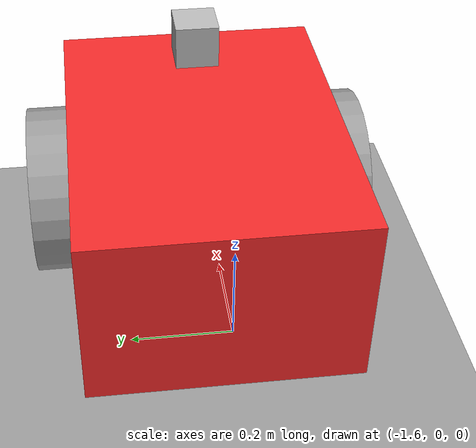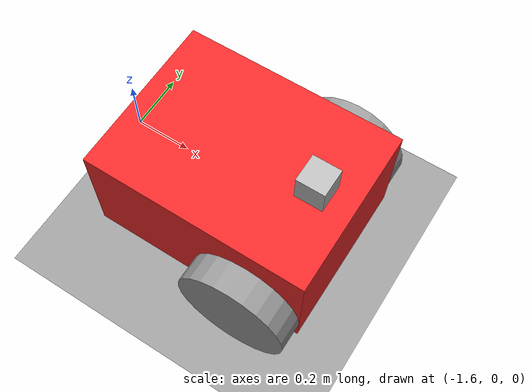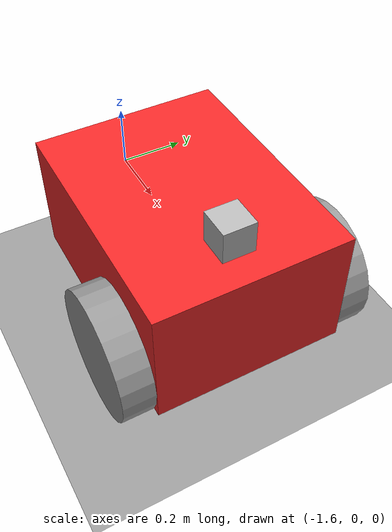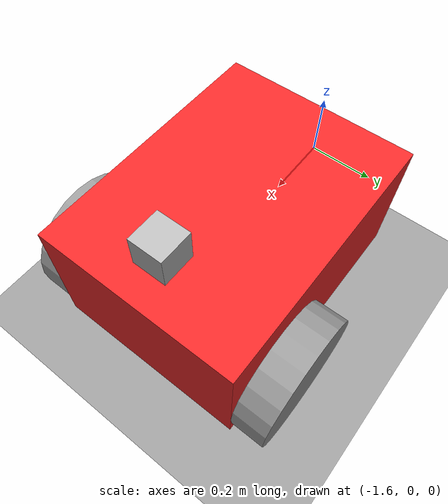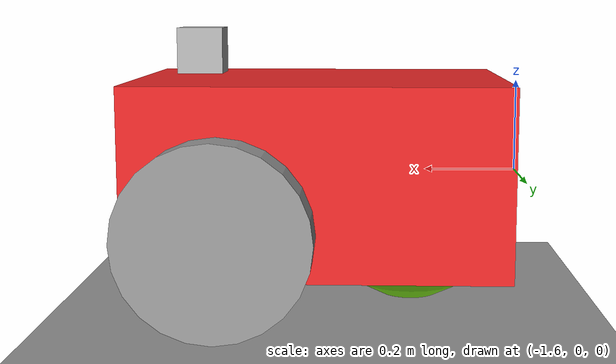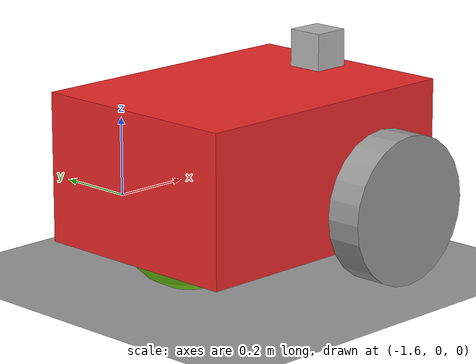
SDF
<?xml version='1.0'?>
<sdf version='1.7'>
  <model name='mobilerobot'>
    <link name='link_0'>
      <inertial>
        <mass>190.622</mass>
        <inertia>
          <ixx>6.99162</ixx>
          <ixy>0</ixy>
          <ixz>0</ixz>
          <iyy>17.0189</iyy>
          <iyz>0</iyz>
          <izz>21.743</izz>
        </inertia>
        <pose>0 0 0 0 -0 0</pose>
      </inertial>
      <pose>-1.16691 0.001464 0.00673 0 -0 0</pose>
      <gravity>1</gravity>
      <self_collide>0</self_collide>
      <kinematic>0</kinematic>
      <enable_wind>0</enable_wind>
      <visual name='visual'>
        <pose>0 0 0 0 -0 0</pose>
        <geometry>
          <box>
            <size>0.8 0.6 0.4</size>
          </box>
        </geometry>
        <material>
          <lighting>1</lighting>
          <script>
            <uri>file://media/materials/scripts/gazebo.material</uri>
            <name>Gazebo/Grey</name>
          </script>
          <shader type='pixel'>
            <normal_map>__default__</normal_map>
          </shader>
          <ambient>0.937 0.161 0.161 1</ambient>
          <diffuse>0.7 0.7 0.7 1</diffuse>
          <specular>0.01 0.01 0.01 1</specular>
          <emissive>0 0 0 1</emissive>
        </material>
        <transparency>0</transparency>
        <cast_shadows>1</cast_shadows>
      </visual>
      <collision name='collision'>
        <laser_retro>0</laser_retro>
        <max_contacts>10</max_contacts>
        <pose>0 0 0 0 -0 0</pose>
        <geometry>
          <box>
            <size>0.8 0.6 0.4</size>
          </box>
        </geometry>
        <surface>
          <friction>
            <ode>
              <mu>1</mu>
              <mu2>1</mu2>
              <fdir1>0 0 0</fdir1>
              <slip1>0</slip1>
              <slip2>0</slip2>
            </ode>
            <torsional>
              <coefficient>1</coefficient>
              <patch_radius>0</patch_radius>
              <surface_radius>0</surface_radius>
              <use_patch_radius>1</use_patch_radius>
              <ode>
                <slip>0</slip>
              </ode>
            </torsional>
          </friction>
          <bounce>
            <restitution_coefficient>0</restitution_coefficient>
            <threshold>1e+06</threshold>
          </bounce>
          <contact>
            <collide_without_contact>0</collide_without_contact>
            <collide_without_contact_bitmask>1</collide_without_contact_bitmask>
            <collide_bitmask>1</collide_bitmask>
            <ode>
              <soft_cfm>0</soft_cfm>
              <soft_erp>0.2</soft_erp>
              <kp>1e+13</kp>
              <kd>1</kd>
              <max_vel>0.01</max_vel>
              <min_depth>0</min_depth>
            </ode>
            <bullet>
              <split_impulse>1</split_impulse>
              <split_impulse_penetration_threshold>-0.01</split_impulse_penetration_threshold>
              <soft_cfm>0</soft_cfm>
              <soft_erp>0.2</soft_erp>
              <kp>1e+13</kp>
              <kd>1</kd>
            </bullet>
          </contact>
        </surface>
      </collision>
    </link>
    <link name='link_1'>
      <inertial>
        <mass>1</mass>
        <inertia>
          <ixx>0.145833</ixx>
          <ixy>0</ixy>
          <ixz>0</ixz>
          <iyy>0.145833</iyy>
          <iyz>0</iyz>
          <izz>0.125</izz>
        </inertia>
        <pose>0 0 0 0 -0 0</pose>
      </inertial>
      <pose>-0.966907 -0.348555 -0.093284 1.5707 -0 0</pose>
      <gravity>1</gravity>
      <self_collide>0</self_collide>
      <kinematic>0</kinematic>
      <enable_wind>0</enable_wind>
      <visual name='visual'>
        <pose>0 0 0 0 -0 0</pose>
        <geometry>
          <cylinder>
            <radius>0.2</radius>
            <length>0.1</length>
          </cylinder>
        </geometry>
        <material>
          <lighting>1</lighting>
          <script>
            <uri>file://media/materials/scripts/gazebo.material</uri>
            <name>Gazebo/Grey</name>
          </script>
          <shader type='pixel'>
            <normal_map>__default__</normal_map>
          </shader>
          <ambient>0.369 0.361 0.392 1</ambient>
          <diffuse>0.7 0.7 0.7 1</diffuse>
          <specular>0.01 0.01 0.01 1</specular>
          <emissive>0 0 0 1</emissive>
        </material>
        <transparency>0</transparency>
        <cast_shadows>1</cast_shadows>
      </visual>
      <collision name='collision'>
        <laser_retro>0</laser_retro>
        <max_contacts>10</max_contacts>
        <pose>0 0 0 0 -0 0</pose>
        <geometry>
          <cylinder>
            <radius>0.2</radius>
            <length>0.1</length>
          </cylinder>
        </geometry>
        <surface>
          <friction>
            <ode>
              <mu>1</mu>
              <mu2>1</mu2>
              <fdir1>0 0 0</fdir1>
              <slip1>0</slip1>
              <slip2>0</slip2>
            </ode>
            <torsional>
              <coefficient>1</coefficient>
              <patch_radius>0</patch_radius>
              <surface_radius>0</surface_radius>
              <use_patch_radius>1</use_patch_radius>
              <ode>
                <slip>0</slip>
              </ode>
            </torsional>
          </friction>
          <bounce>
            <restitution_coefficient>0</restitution_coefficient>
            <threshold>1e+06</threshold>
          </bounce>
          <contact>
            <collide_without_contact>0</collide_without_contact>
            <collide_without_contact_bitmask>1</collide_without_contact_bitmask>
            <collide_bitmask>1</collide_bitmask>
            <ode>
              <soft_cfm>0</soft_cfm>
              <soft_erp>0.2</soft_erp>
              <kp>1e+13</kp>
              <kd>1</kd>
              <max_vel>0.01</max_vel>
              <min_depth>0</min_depth>
            </ode>
            <bullet>
              <split_impulse>1</split_impulse>
              <split_impulse_penetration_threshold>-0.01</split_impulse_penetration_threshold>
              <soft_cfm>0</soft_cfm>
              <soft_erp>0.2</soft_erp>
              <kp>1e+13</kp>
              <kd>1</kd>
            </bullet>
          </contact>
        </surface>
      </collision>
    </link>
    <link name='link_1_clone'>
      <inertial>
        <mass>1</mass>
        <inertia>
          <ixx>0.145833</ixx>
          <ixy>0</ixy>
          <ixz>0</ixz>
          <iyy>0.145833</iyy>
          <iyz>0</iyz>
          <izz>0.125</izz>
        </inertia>
        <pose>0 0 0 0 -0 0</pose>
      </inertial>
      <pose>-0.966907 0.351483 -0.09327 1.5707 -0 0</pose>
      <gravity>1</gravity>
      <self_collide>0</self_collide>
      <kinematic>0</kinematic>
      <enable_wind>0</enable_wind>
      <visual name='visual'>
        <pose>0 0 0 0 -0 0</pose>
        <geometry>
          <cylinder>
            <radius>0.2</radius>
            <length>0.1</length>
          </cylinder>
        </geometry>
        <material>
          <lighting>1</lighting>
          <script>
            <uri>file://media/materials/scripts/gazebo.material</uri>
            <name>Gazebo/Grey</name>
          </script>
          <shader type='pixel'>
            <normal_map>__default__</normal_map>
          </shader>
          <ambient>0.369 0.361 0.392 1</ambient>
          <diffuse>0.7 0.7 0.7 1</diffuse>
          <specular>0.01 0.01 0.01 1</specular>
          <emissive>0 0 0 1</emissive>
        </material>
        <transparency>0</transparency>
        <cast_shadows>1</cast_shadows>
      </visual>
      <collision name='collision'>
        <laser_retro>0</laser_retro>
        <max_contacts>10</max_contacts>
        <pose>0 0 0 0 -0 0</pose>
        <geometry>
          <cylinder>
            <radius>0.2</radius>
            <length>0.1</length>
          </cylinder>
        </geometry>
        <surface>
          <friction>
            <ode>
              <mu>1</mu>
              <mu2>1</mu2>
              <fdir1>0 0 0</fdir1>
              <slip1>0</slip1>
              <slip2>0</slip2>
            </ode>
            <torsional>
              <coefficient>1</coefficient>
              <patch_radius>0</patch_radius>
              <surface_radius>0</surface_radius>
              <use_patch_radius>1</use_patch_radius>
              <ode>
                <slip>0</slip>
              </ode>
            </torsional>
          </friction>
          <bounce>
            <restitution_coefficient>0</restitution_coefficient>
            <threshold>1e+06</threshold>
          </bounce>
          <contact>
            <collide_without_contact>0</collide_without_contact>
            <collide_without_contact_bitmask>1</collide_without_contact_bitmask>
            <collide_bitmask>1</collide_bitmask>
            <ode>
              <soft_cfm>0</soft_cfm>
              <soft_erp>0.2</soft_erp>
              <kp>1e+13</kp>
              <kd>1</kd>
              <max_vel>0.01</max_vel>
              <min_depth>0</min_depth>
            </ode>
            <bullet>
              <split_impulse>1</split_impulse>
              <split_impulse_penetration_threshold>-0.01</split_impulse_penetration_threshold>
              <soft_cfm>0</soft_cfm>
              <soft_erp>0.2</soft_erp>
              <kp>1e+13</kp>
              <kd>1</kd>
            </bullet>
          </contact>
        </surface>
      </collision>
    </link>
    <link name='link_2'>
      <inertial>
        <mass>615.229</mass>
        <inertia>
          <ixx>61.5229</ixx>
          <ixy>0</ixy>
          <ixz>0</ixz>
          <iyy>61.5229</iyy>
          <iyz>0</iyz>
          <izz>61.5229</izz>
        </inertia>
        <pose>0 0 0 0 -0 0</pose>
      </inertial>
      <pose>-1.36691 0.001464 -0.09327 0 -0 0</pose>
      <gravity>1</gravity>
      <self_collide>0</self_collide>
      <kinematic>0</kinematic>
      <enable_wind>0</enable_wind>
      <visual name='visual'>
        <pose>0 0 0 0 -0 0</pose>
        <geometry>
          <sphere>
            <radius>0.2</radius>
          </sphere>
        </geometry>
        <material>
          <lighting>1</lighting>
          <script>
            <uri>file://media/materials/scripts/gazebo.material</uri>
            <name>Gazebo/Grey</name>
          </script>
          <shader type='pixel'>
            <normal_map>__default__</normal_map>
          </shader>
          <ambient>0.451 0.824 0.086 1</ambient>
          <diffuse>0.7 0.7 0.7 1</diffuse>
          <specular>0.01 0.01 0.01 1</specular>
          <emissive>0 0 0 1</emissive>
        </material>
        <transparency>0</transparency>
        <cast_shadows>1</cast_shadows>
      </visual>
      <collision name='collision'>
        <laser_retro>0</laser_retro>
        <max_contacts>10</max_contacts>
        <pose>0 0 0 0 -0 0</pose>
        <geometry>
          <sphere>
            <radius>0.2</radius>
          </sphere>
        </geometry>
        <surface>
          <friction>
            <ode>
              <mu>1</mu>
              <mu2>1</mu2>
              <fdir1>0 0 0</fdir1>
              <slip1>0</slip1>
              <slip2>0</slip2>
            </ode>
            <torsional>
              <coefficient>1</coefficient>
              <patch_radius>0</patch_radius>
              <surface_radius>0</surface_radius>
              <use_patch_radius>1</use_patch_radius>
              <ode>
                <slip>0</slip>
              </ode>
            </torsional>
          </friction>
          <bounce>
            <restitution_coefficient>0</restitution_coefficient>
            <threshold>1e+06</threshold>
          </bounce>
          <contact>
            <collide_without_contact>0</collide_without_contact>
            <collide_without_contact_bitmask>1</collide_without_contact_bitmask>
            <collide_bitmask>1</collide_bitmask>
            <ode>
              <soft_cfm>0</soft_cfm>
              <soft_erp>0.2</soft_erp>
              <kp>1e+13</kp>
              <kd>1</kd>
              <max_vel>0.01</max_vel>
              <min_depth>0</min_depth>
            </ode>
            <bullet>
              <split_impulse>1</split_impulse>
              <split_impulse_penetration_threshold>-0.01</split_impulse_penetration_threshold>
              <soft_cfm>0</soft_cfm>
              <soft_erp>0.2</soft_erp>
              <kp>1e+13</kp>
              <kd>1</kd>
            </bullet>
          </contact>
        </surface>
      </collision>
    </link>
    <model name='camera'>
      <pose>-0.900085 -0.007321 0.266365 0 -0 0</pose>
      <link name='link'>
        <inertial>
          <mass>0.1</mass>
          <inertia>
            <ixx>0.000166667</ixx>
            <iyy>0.000166667</iyy>
            <izz>0.000166667</izz>
            <ixy>0</ixy>
            <ixz>0</ixz>
            <iyz>0</iyz>
          </inertia>
        </inertial>
        <collision name='collision'>
          <geometry>
            <box>
              <size>0.1 0.1 0.1</size>
            </box>
          </geometry>
        </collision>
        <visual name='visual'>
          <geometry>
            <box>
              <size>0.1 0.1 0.1</size>
            </box>
          </geometry>
        </visual>
        <sensor name='camera' type='camera'>
          <camera>
            <horizontal_fov>1.047</horizontal_fov>
            <image>
              <width>320</width>
              <height>240</height>
            </image>
            <clip>
              <near>0.1</near>
              <far>100</far>
            </clip>
          </camera>
          <always_on>1</always_on>
          <update_rate>30</update_rate>
          <visualize>1</visualize>
        </sensor>
      </link>
    </model>
    <model name='ground_plane'>
      <static>1</static>
      <link name='link'>
        <collision name='collision'>
          <geometry>
            <plane>
              <normal>0 0 1</normal>
              <size>100 100</size>
            </plane>
          </geometry>
          <surface>
            <contact>
              <collide_bitmask>65535</collide_bitmask>
            </contact>
            <friction>
              <ode>
                <mu>100</mu>
                <mu2>50</mu2>
              </ode>
            </friction>
          </surface>
        </collision>
        <visual name='visual'>
          <cast_shadows>0</cast_shadows>
          <geometry>
            <plane>
              <normal>0 0 1</normal>
              <size>100 100</size>
            </plane>
          </geometry>
          <material>
            <script>
              <uri>file://media/materials/scripts/gazebo.material</uri>
              <name>Gazebo/Grey</name>
            </script>
          </material>
        </visual>
      </link>
      <pose>5.36772 0.001464 -0.29327 0 -0 0</pose>
    </model>
    <joint name='link_0_JOINT_0' type='revolute'>
      <parent>link_0</parent>
      <child>link_1</child>
      <pose>0 0 0 0 -0 0</pose>
      <axis>
        <xyz>0 0 -1</xyz>
        <limit>
          <lower>-1.79769e+308</lower>
          <upper>1.79769e+308</upper>
          <effort>-1</effort>
          <velocity>-1</velocity>
        </limit>
        <dynamics>
          <spring_reference>0</spring_reference>
          <spring_stiffness>0</spring_stiffness>
          <damping>0</damping>
          <friction>0</friction>
        </dynamics>
      </axis>
      <physics>
        <ode>
          <limit>
            <cfm>0</cfm>
            <erp>0.2</erp>
          </limit>
          <suspension>
            <cfm>0</cfm>
            <erp>0.2</erp>
          </suspension>
        </ode>
      </physics>
    </joint>
    <joint name='link_0_JOINT_1' type='revolute'>
      <parent>link_0</parent>
      <child>link_1_clone</child>
      <pose>0 0 0 0 -0 0</pose>
      <axis>
        <xyz>0 0 1</xyz>
        <limit>
          <lower>-1.79769e+308</lower>
          <upper>1.79769e+308</upper>
          <effort>-1</effort>
          <velocity>-1</velocity>
        </limit>
        <dynamics>
          <spring_reference>0</spring_reference>
          <spring_stiffness>0</spring_stiffness>
          <damping>0</damping>
          <friction>0</friction>
        </dynamics>
      </axis>
      <physics>
        <ode>
          <limit>
            <cfm>0</cfm>
            <erp>0.2</erp>
          </limit>
          <suspension>
            <cfm>0</cfm>
            <erp>0.2</erp>
          </suspension>
        </ode>
      </physics>
    </joint>
    <joint name='link_0_JOINT_2' type='ball'>
      <parent>link_0</parent>
      <child>link_2</child>
      <pose>0 0 0 0 -0 0</pose>
      <physics>
        <ode>
          <limit>
            <cfm>0</cfm>
            <erp>0.2</erp>
          </limit>
          <suspension>
            <cfm>0</cfm>
            <erp>0.2</erp>
          </suspension>
        </ode>
      </physics>
    </joint>
    <joint name='link_0_JOINT_3' type='fixed'>
      <parent>link_0</parent>
      <child>camera::link</child>
      <pose>0 0 0 0 -0 0</pose>
      <physics>
        <ode>
          <limit>
            <cfm>0</cfm>
            <erp>0.2</erp>
          </limit>
          <suspension>
            <cfm>0</cfm>
            <erp>0.2</erp>
          </suspension>
        </ode>
      </physics>
    </joint>
    <static>0</static>
    <allow_auto_disable>1</allow_auto_disable>
  </model>
</sdf>
